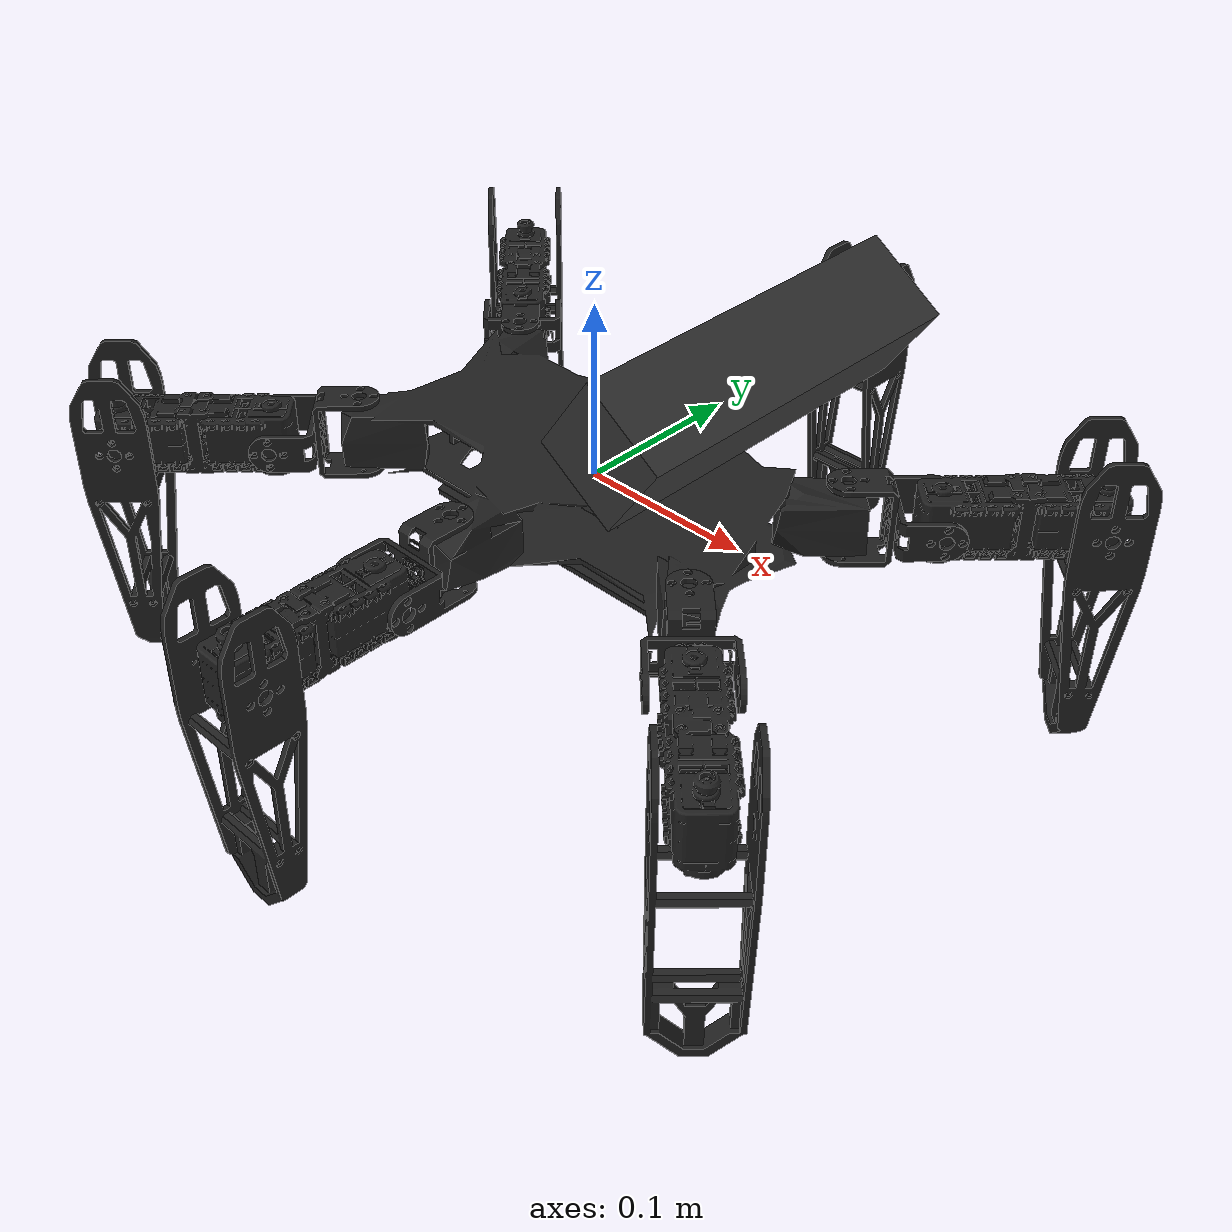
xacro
<?xml version="1.0"?>
<robot name="phantomx" xmlns:xacro="http://ros.org/wiki/xacro">

    <!-- Import all Gazebo-customization elements, including Gazebo colors -->
    <xacro:include filename="$(find phantomx_description)/urdf/phantomx.gazebo" />
    <!-- Import Rviz colors -->
    <xacro:include filename="$(find phantomx_description)/urdf/materials.xacro" />
    <!-- Import macros -->
    <xacro:include filename="$(find phantomx_description)/urdf/macros.xacro" />
    <!-- Import Kinect Sensor -->
    <xacro:include filename="$(find phantomx_description)/urdf/kinect.urdf.xacro" />

    <!-- Root link -->
    <link name="root_link" />

    <!-- Base link -->
    <link name="base_link">
        <visual>
            <geometry>
                <mesh filename="package://phantomx_description/meshes/base_link.stl" />
            </geometry>
            <origin xyz="0 0 0" rpy="0 0 0" />
            <material name="black"/>
        </visual>
        <collision>
            <geometry>
                <mesh filename="package://phantomx_description/meshes/base_link_simple.stl" />
            </geometry>
            <origin xyz="0 0 0" rpy="0 0 0" />
        </collision>
        <inertial>
            <origin xyz="0 0 0" />
		    <mass value="0.97559947"/>
		    <inertia ixx="3.1081800"  ixy="-0.25460189"  ixz="2.0318174" iyy="6.3787776" iyz="0.16417863" izz="5.3316425" />
        </inertial>
    </link>

    <joint name="root_joint" type="fixed">
        <parent link="root_link" />
        <child link="base_link" />
        <origin xyz="0 0 0" />
    </joint>

    <!-- Legs -->
    <xacro:leg prefix="AL" xyz="0.12 0.06 0" rpy="0 0 ${PI/4}" femur_axis="0 0 -1" tibia_axis="0 0 1" />
    <xacro:leg prefix="AR" xyz="0.12 -0.06 0" rpy="0 0 -${PI/4}" femur_axis="0 0 1" tibia_axis="0 0 -1" />
    <xacro:leg prefix="BL" xyz="0 0.1 0" rpy="0 0 ${PI/2}" femur_axis="0 0 -1" tibia_axis="0 0 1" />
    <xacro:leg prefix="BR" xyz="0 -0.1 0" rpy="0 0 -${PI/2}" femur_axis="0 0 1" tibia_axis="0 0 -1" />
    <xacro:leg prefix="CL" xyz="-0.12 0.06 0" rpy="0 0 ${3*PI/4}" femur_axis="0 0 -1" tibia_axis="0 0 1" />
    <xacro:leg prefix="CR" xyz="-0.12 -0.06 0" rpy="0 0 -${3*PI/4}" femur_axis="0 0 1" tibia_axis="0 0 -1" />

</robot>

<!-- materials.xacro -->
<robot>

  <material name="black">
    <color rgba="0.13 0.13 0.13 1.0"/>
  </material>

  <material name="blue">
    <color rgba="0.0 0.0 0.8 1.0"/>
  </material>

  <material name="green">
    <color rgba="0.0 0.8 0.0 1.0"/>
  </material>

  <material name="grey">
    <color rgba="0.2 0.2 0.2 1.0"/>
  </material>

  <material name="orange">
    <color rgba="${255/255} ${108/255} ${10/255} 1.0"/>
  </material>

  <material name="brown">
    <color rgba="${222/255} ${207/255} ${195/255} 1.0"/>
  </material>

  <material name="red">
    <color rgba="0.8 0.0 0.0 1.0"/>
  </material>

  <material name="white">
    <color rgba="1.0 1.0 1.0 1.0"/>
  </material>

</robot>

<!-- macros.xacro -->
<robot xmlns:xacro="http://ros.org/wiki/xacro">

    <xacro:property name="PI" value="3.141592654" />
    <xacro:property name="LEN_COXA" value="0.048" />
    <xacro:property name="LEN_FEMUR" value="0.083" />
    <xacro:property name="LEN_TIBIA" value="0.143" />

    <xacro:macro name="leg" params="prefix xyz rpy femur_axis tibia_axis" >

        <link name="${prefix}_coxa_link">
            <visual>
                <geometry>
                    <mesh filename="package://phantomx_description/meshes/coxa_link.STL" />
                </geometry>
                <origin xyz="0 0 0" rpy="0 0 0" />
                <material name="black"/>
            </visual>
            <collision>
                <geometry>
                    <mesh filename="package://phantomx_description/meshes/coxa_link_simple.STL" />
                </geometry>
                <origin xyz="0 0 0" rpy="0 0 0" />
            </collision>
            <inertial>
                <origin xyz="0.024001547 0 0" />
                <mass value="0.01096414"/>
                <inertia ixx="0.01"  ixy="0.0"  ixz="0.0" iyy="0.01" iyz="0.0" izz="0.01" />
            </inertial>
        </link>

        <link name="${prefix}_femur_link">
            <visual>
                <geometry>
                    <mesh filename="package://phantomx_description/meshes/femur_link.STL" />
                </geometry>
                <origin xyz="0 0 0" rpy="0 0 0" />
                <material name="black"/>
            </visual>
            <collision>
                <geometry>
                    <mesh filename="package://phantomx_description/meshes/femur_link_simple.STL" />
                </geometry>
                <origin xyz="0 0 0" rpy="0 0 0" />
            </collision>
            <inertial>
                <origin xyz="0.04208275 0.00000123 -0.00098111" />
                <mass value="0.12147677"/>
                <inertia ixx="0.01"  ixy="0.0"  ixz="0" iyy="0.01" iyz="0.0" izz="0.01" />
            </inertial>
        </link>

        <link name="${prefix}_tibia_link">
            <visual>
                <geometry>
                    <mesh filename="package://phantomx_description/meshes/tibia_link.STL" />
                </geometry>
                <origin xyz="0 0 0" rpy="0 0 0" />
                <material name="black"/>
            </visual>
            <collision>
                <geometry>
                    <mesh filename="package://phantomx_description/meshes/tibia_link_simple.STL" />
                </geometry>
                <origin xyz="0 0 0" rpy="0 0 0" />
            </collision>
            <inertial>
                <origin xyz="0.05151483 0 0" />
                <mass value="0.03741374"/>
                <inertia ixx="0.01"  ixy="0.0"  ixz="0.0" iyy="0.01" iyz="0.0" izz="0.01" />
            </inertial>
        </link>

        <link name="${prefix}_foot_link" />

        <joint name="${prefix}_coxa_joint" type="revolute" >
            <parent link="base_link" />
            <child link="${prefix}_coxa_link" />
            <limit effort="1000.0" lower="-3.14" upper="3.14" velocity="1.0" />
            <axis xyz="0 0 1" />
            <origin xyz="${xyz}" rpy="${rpy}" />
            <dynamics friction="1.5" damping="1.5" />
        </joint>

        <joint name="${prefix}_femur_joint" type="revolute" >
            <parent link="${prefix}_coxa_link" />
            <child link="${prefix}_femur_link" />
            <limit effort="1000.0" lower="-1.5707" upper="1.5707" velocity="1.0" />
            <axis xyz="${femur_axis}" />
            <origin xyz="${LEN_COXA} 0 0" rpy="1.5707 0 0" />
            <dynamics friction="1.5" damping="1.5" />
        </joint>

        <joint name="${prefix}_tibia_joint" type="revolute" >
            <parent link="${prefix}_femur_link" />
            <child link="${prefix}_tibia_link" />
            <limit effort="1000.0" lower="-2.3562" upper="2.3562" velocity="1.0" />
            <axis xyz="${tibia_axis}" />
            <origin xyz="${LEN_FEMUR} 0 0" rpy="0 0 ${-PI/2}" />
            <dynamics friction="1.5" damping="1.5" />
        </joint>

        <joint name="${prefix}_foot_joint" type="fixed">
            <parent link="${prefix}_tibia_link" />
            <child link="${prefix}_foot_link" />
            <limit effort="1000.0" lower="-2.3562" upper="2.3562" velocity="1.0" />
            <axis xyz="1 0 0" />
            <origin xyz="${LEN_TIBIA} 0 0" rpy="0 0 0" />
        </joint>

        <transmission name="tran_${prefix}_coxa">
            <type>transmission_interface/SimpleTransmission</type>
            <joint name="${prefix}_coxa_joint">
            <hardwareInterface>hardware_interface/EffortJointInterface</hardwareInterface>
            </joint>
            <actuator name="motor_${prefix}_coxa">
                <hardwareInterface>hardware_interface/EffortJointInterface</hardwareInterface>
                <mechanicalReduction>50</mechanicalReduction>
            </actuator>
        </transmission>

        <transmission name="tran_${prefix}_femur">
            <type>transmission_interface/SimpleTransmission</type>
            <joint name="${prefix}_femur_joint">
            <hardwareInterface>hardware_interface/EffortJointInterface</hardwareInterface>
            </joint>
            <actuator name="motor_${prefix}_femur">
                <hardwareInterface>hardware_interface/EffortJointInterface</hardwareInterface>
                <mechanicalReduction>50</mechanicalReduction>
            </actuator>
        </transmission>

        <transmission name="tran_${prefix}_tibia">
            <type>transmission_interface/SimpleTransmission</type>
            <joint name="${prefix}_tibia_joint">
            <hardwareInterface>hardware_interface/EffortJointInterface</hardwareInterface>
            </joint>
            <actuator name="motor_${prefix}_tibia">
                <hardwareInterface>hardware_interface/EffortJointInterface</hardwareInterface>
                <mechanicalReduction>50</mechanicalReduction>
            </actuator>
        </transmission>

        <gazebo reference="${prefix}_coxa_link">
            <material>Gazebo/Black</material>
            <mu1>0.8</mu1>
            <mu2>0.6</mu2>
            <kp>100</kp>
            <kd>10</kd>
            <gravity>True</gravity>
        </gazebo>

        <gazebo reference="${prefix}_femur_link">
            <material>Gazebo/Black</material>
            <mu1>0.8</mu1>
            <mu2>0.6</mu2>
            <kp>100</kp>
            <kd>10</kd>
            <gravity>True</gravity>
        </gazebo>

        <gazebo reference="${prefix}_tibia_link">
            <material>Gazebo/Black</material>
            <mu1>0.8</mu1>
            <mu2>0.6</mu2>
            <kp>1000</kp>
            <kd>100</kd>
            <gravity>True</gravity>

            <sensor name="${prefix}_foot_contact_sensor" type="contact">
                <always_on>true</always_on>
                <update_rate>1</update_rate>
                <contact>
                    <collision>${prefix}_tibia_link_collision</collision>
                </contact>
                <plugin name="gripper_bumper" filename="libgazebo_ros_bumper.so">
                    <bumperTopicName>${prefix}_foot_contact_sensor_state</bumperTopicName>
                    <frameName>${prefix}_foot</frameName>
                </plugin>
            </sensor>

        </gazebo>

    </xacro:macro>

</robot>

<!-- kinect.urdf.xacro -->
<robot xmlns:xacro="http://ros.org/wiki/xacro" name="kinect_link">
	<!-- Add a kinect sensor : first the visual/collision/inertial box -->
	<link name="kinect_link">
		<collision>
			<origin xyz="0 0 0" rpy="0 0 0"/>
			<geometry>
				<!-- coarse model; a simple box -->
				<box size="0.05 0.2 0.05"/>
			</geometry>
		</collision>

		<visual>
			<origin xyz="0 0 0" rpy="0 0 0" />
			<geometry>
				<box size="0.05 0.2 0.05" />
			</geometry>
			<material name="kinect_gray">
				<color rgba="0.2 0.2 0.2 1.0"/>
			</material>
		</visual>

		<inertial>
			<mass value="0.1" />
			<origin xyz="0 0 0" rpy="0 0 0"/>
			<inertia ixx="0.001" ixy="0" ixz="0" iyy="0.001" iyz="0" izz="0.001" />
		</inertial>

	</link>

	<!-- Position and orientation of the kinect sensor -->
	<joint name="kinect_joint" type="fixed">
		<axis xyz="0 1 0" />
		<origin xyz="0.1 0.0 0.1" rpy="0.0 0.6 0"/>
		<parent link="base_link"/>
		<child link="kinect_link"/>
	</joint>

	<joint name="camera_optical_joint" type="fixed">
		<!--Don't change these values, otherwise the gazebo camera image won't be aligned properly with the frame it is supposedly originating from-->
		<origin xyz="0 0 0" rpy="${-pi/2} 0 ${-pi/2}"/>
		<parent link="kinect_link"/>
		<child link="camera_link_optical"/>
	</joint>

	<link name="camera_link_optical">
	</link>

	<!--Add kinect sensor emulation-->
	<gazebo reference="kinect_link">
		<sensor type="depth" name="camera_1">
			<always_on>1</always_on>
			<visualize>true</visualize>
			<camera>
				<horizontal_fov>1.047</horizontal_fov>
				<image>
					<width>640</width>
					<height>480</height>
					<format>R8G8B8</format>
				</image>

				<depth_camera>
				</depth_camera>

				<clip>
					<near>0.1</near>
					<far>100</far>
				</clip>
			</camera>

			<plugin name="camera_controller" filename="libgazebo_ros_openni_kinect.so">
				<alwaysOn>true</alwaysOn>
					<updateRate>10.0</updateRate>
					<cameraName>kinect</cameraName>
					<frameName>camera_link_optical</frameName>
				<imageTopicName>rgb/image_raw</imageTopicName>
				<depthImageTopicName>depth/image_raw</depthImageTopicName>
				<pointCloudTopicName>depth/points</pointCloudTopicName>
				<cameraInfoTopicName>rgb/camera_info</cameraInfoTopicName>
				<depthImageCameraInfoTopicName>depht/camera_info</depthImageCameraInfoTopicName>
				<pointCloudCutoff>0.4</pointCloudCutoff>
					<hackBaseline>0.07</hackBaseline>
					<distortionK1>0.0</distortionK1>
					<distortionK2>0.0</distortionK2>
					<distortionK3>0.0</distortionK3>
					<distortionT1>0.0</distortionT1>
					<distortionT2>0.0</distortionT2>
				<CxPrime>0.0</CxPrime>
				<Cx>0.0</Cx>
				<Cy>0.0</Cy>
				<focalLength>0.0</focalLength>
			</plugin>
		</sensor>
	</gazebo>
</robot>
